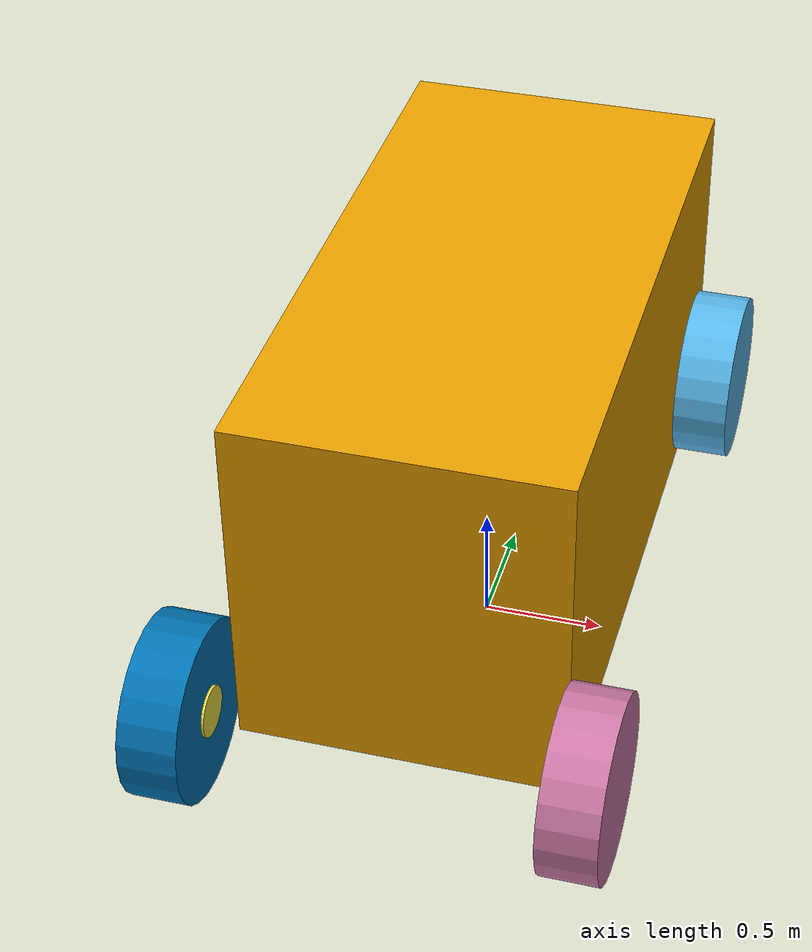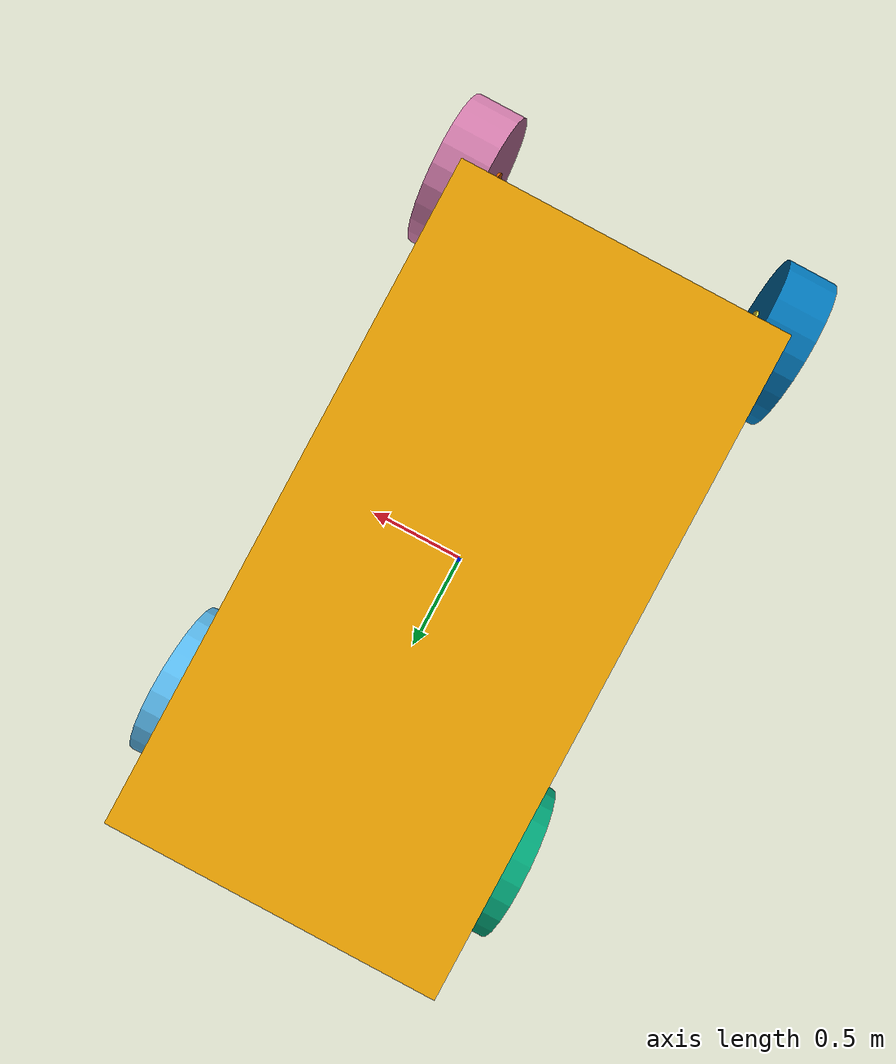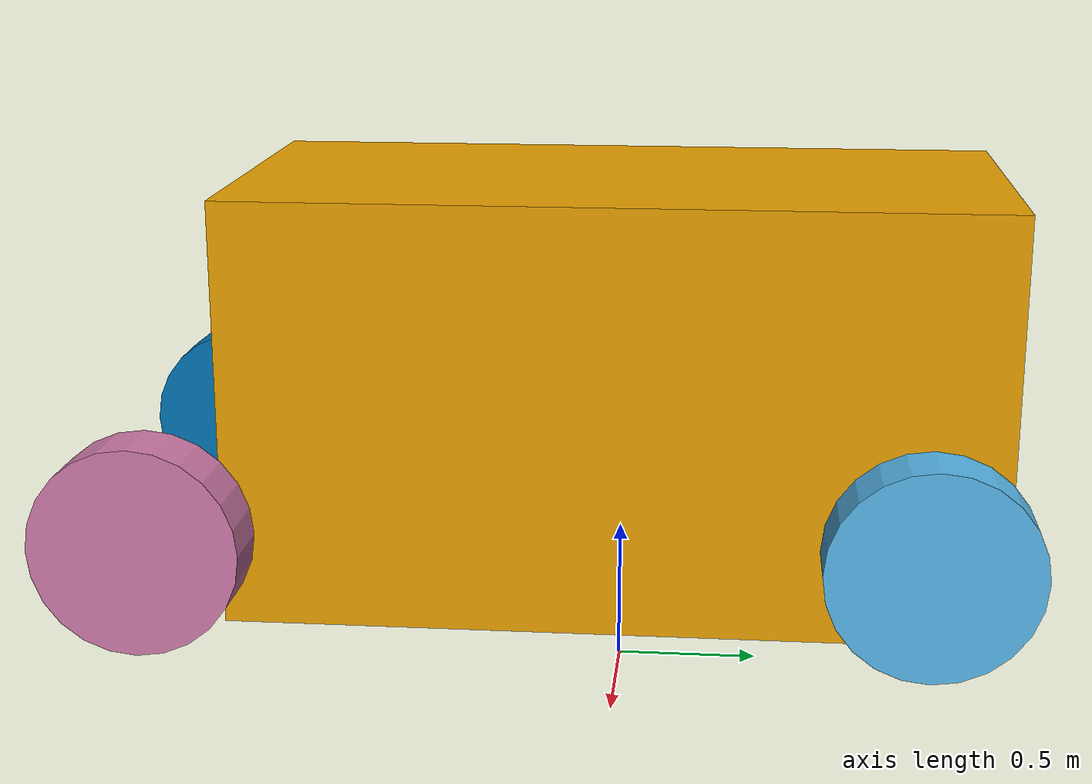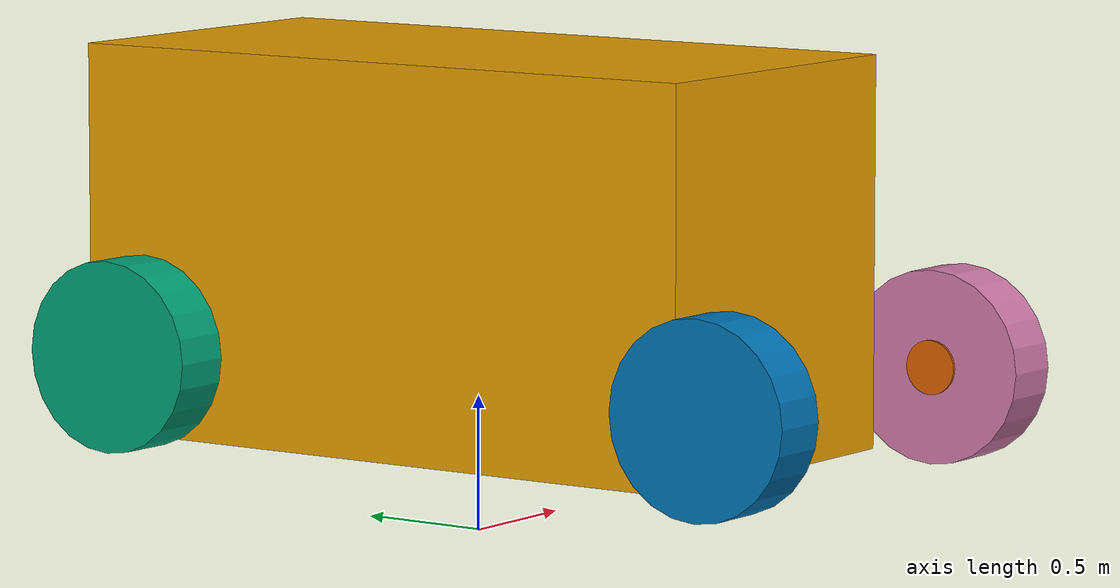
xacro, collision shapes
<?xml version="1.0" ?>

<robot name="Box" xmlns:xacro="http://www.ros.org/wiki/xacro">

  <xacro:property name="PI" value="3.1415926835897931"/>
  <xacro:property name="base_height" value="1.0639"/>
  <xacro:property name="tyre_x" value="-1.05"/>
  <xacro:property name="tyre_x2" value="-1.55"/>
  <xacro:property name="tyre_y" value="0.765"/>
  <xacro:property name="tyre_length" value="0.229"/>
  <xacro:property name="tyre_r" value="0.66"/>
  <xacro:property name="tyre_radius" value="0.356"/>
  <xacro:property name="car_height" value="1.4478"/>
  <xacro:property name="sensor_box" value="0.25"/>
  <xacro:property name="tyre_height" value="-0.696"/>
  <xacro:property name="str_length" value="0.01"/>
  <xacro:property name="str_radius" value="0.1"/>
  <xacro:property name="str_angle" value="0.05"/>
  <xacro:property name="car_width" value="1.301"/>
  <xacro:property name="tyre_origin">
        <origin xyz="0 0 0" rpy="${PI/2} 0 ${-PI/2}"/>
  </xacro:property>
  <xacro:property name="tyre_origin_2">
        <origin xyz="0 0 0" rpy="0 0 ${-PI/2}"/>
  </xacro:property>
  <xacro:property name="tyre_origin_3">
        <origin xyz="0 0 0" rpy="0 0 0"/>
  </xacro:property>

        <xacro:include filename="$(find cat_description)/urdf/box.gazebo"/>

<!--Car Body-->

<link name="base_link">
     <collision>
         <origin xyz="0 0 ${base_height}" rpy="0 0 ${-PI/2}"/>
           <geometry>
            <box size="2.62 ${car_width} ${car_height}"/>
        </geometry>
      </collision>

     <visual>
        <origin xyz="0 0 ${base_height + 0.05}" rpy="0 0 ${-PI/2}"/>
        <geometry>
          <mesh filename="package://cat_description/meshes/ford_escape_no_wheels_2.dae"/>
        </geometry>
     </visual>

     <inertial>
        <origin xyz="0 0 ${base_height}" rpy="0 0 0"/>
        <mass value="2000.000000"/>
        <inertia
          ixx="480"  ixy="0.000000" ixz="0.000000"
          iyy="1370" iyz="0.000000"
          izz="1370"/>
      </inertial>
</link>

<!--Back Right Wheel-->

<joint name="back_right_wheel_joint" type="fixed">
      <parent link="base_link"/>
      <child link="back_right_wheel_link"/>
      <origin xyz="${tyre_y} ${-tyre_x} ${tyre_r}" rpy="0 0 0"/>
      <axis xyz="0 1 0"/>
      <dynamics damping="0.7"/>
     <limit effort="100" velocity="100" />
      <joint_properties damping="0.0" friction="5.0" />
</joint>

<link name="back_right_wheel_link">
     <collision>
	<xacro:insert_block name="tyre_origin"/>
        <geometry>
         <cylinder length="${tyre_length}" radius="${tyre_radius}"/>
        </geometry>
     </collision>

     <visual>
      <xacro:insert_block name="tyre_origin_3"/>
        <geometry>
          <mesh filename="package://cat_description/meshes/ford_escape_wheel.dae"/>
      <scale xyz="1.2 1 1"/>
        </geometry>
      </visual>

      <inertial>
        <origin xyz="0 0 0" rpy="0 0 0"/>
        <mass value="10.00"/>
        <inertia
          ixx="0.4"  ixy="0.000000"  ixz="0.000000"
          iyy="0.6"  iyz="0.000000"
          izz="0.4"/>
      </inertial>
</link>

<!--Back Left Wheel-->

<joint name="back_left_wheel_joint" type="fixed">
      <parent link="base_link"/>
      <child link="back_left_wheel_link"/>
      <origin xyz="${-tyre_y} ${-tyre_x} ${tyre_r}" rpy="0 0 0"/>
      <axis xyz="0 1 0"/>
      <limit effort="100" velocity="100" />
      <joint_properties damping="0.0" friction="5.0" />
</joint>

<link name="back_left_wheel_link">
     <collision>
      <xacro:insert_block name="tyre_origin"/>
        <geometry>
         <cylinder length="0.229" radius="${tyre_radius}"/>
        </geometry>
     </collision>

     <visual>
      <origin xyz="0 0 0" rpy="0 0 ${PI}"/>
        <geometry>
          <mesh filename="package://cat_description/meshes/ford_escape_wheel.dae"/>
          <scale xyz="1.2 1 1"/>
        </geometry>
      </visual>

      <inertial>
        <origin xyz="0 0 0" rpy="0 0 0"/>
        <mass value="10.00"/>
        <inertia
          ixx="0.4"  ixy="0.000000"  ixz="0.000000"
          iyy="0.6"  iyz="0.000000"
          izz="0.4"/>
      </inertial>
</link>

<!--Right Steering-->

<joint name="front_right_steering_joint" type="revolute">
        <parent link="base_link"/>
        <child link="front_right_steering_link"/>
        <origin xyz="${-car_width/2 - str_length/2} ${tyre_x2}  ${tyre_r}" rpy="0 0 0"/>
        <axis xyz="0 0 1"/>
        <limit effort="1000.0" lower="${-str_angle}" upper="${str_angle}" velocity="0.5"/>
</joint>

<link name="front_right_steering_link">
        <collision>
              <xacro:insert_block name="tyre_origin"/>
                <geometry>
                 <cylinder length="${str_length}" radius="${str_radius}"/>
                </geometry>
        </collision>

        <visual>
              <xacro:insert_block name="tyre_origin"/>
                <geometry>
                 <cylinder length="${str_length}" radius="${str_radius}"/>
                </geometry>
        </visual>

      <inertial>
        <origin xyz="0 0 0" rpy="0 0 0"/>
        <mass value="1.00"/>
        <inertia
          ixx="0.4"  ixy="0.000000"  ixz="0.000000"
          iyy="0.6"  iyz="0.000000"
          izz="0.4"/>
      </inertial>
</link>

<!--Right Front Wheel-->

<joint name="front_right_wheel_joint" type="fixed">
      <parent link="front_right_steering_link"/>
      <child link="front_right_wheel_link"/>
      <origin xyz="${-str_length/2 - tyre_length/2} 0 0" rpy="0 0 ${PI}"/>
      <axis xyz="0 1 0"/>
</joint>

<link name="front_right_wheel_link">
     <collision>
      <xacro:insert_block name="tyre_origin"/>
        <geometry>
         <cylinder length="${tyre_length}" radius="${tyre_radius}"/>
        </geometry>

     </collision>

     <visual>
      <xacro:insert_block name="tyre_origin_3"/>
        <geometry>
          <mesh filename="package://cat_description/meshes/ford_escape_wheel.dae"/>
        <scale xyz="1.2 1 1"/>
       </geometry>
      </visual>

      <inertial>
        <origin xyz="0 0 0" rpy="0 0 0"/>
        <mass value="10.00"/>
        <inertia
          ixx="0.4"  ixy="0.000000"  ixz="0.000000"
          iyy="0.6"  iyz="0.000000"
          izz="0.4"/>
      </inertial>
</link>

<!--Left Steering-->

<joint name="front_left_steering_joint" type="revolute">
        <parent link="base_link"/>
        <child link="front_left_steering_link"/>
        <origin xyz="${car_width/2 + str_length/2} ${tyre_x2} ${tyre_r}" rpy="0 0 0"/>
        <axis xyz="0 0 1"/>
        <limit effort="1000.0" lower="${-str_angle}" upper="${str_angle}" velocity="0.5"/>
</joint>

<link name="front_left_steering_link">
        <collision>
              <xacro:insert_block name="tyre_origin"/>
                <geometry>
                 <cylinder length="${str_length}" radius="${str_radius}"/>
                </geometry>
        </collision>

        <visual>
              <xacro:insert_block name="tyre_origin"/>
                <geometry>
                 <cylinder length="${str_length}" radius="${str_radius}"/>
                </geometry>
        </visual>

      <inertial>
        <origin xyz="0 0 0" rpy="0 0 0"/>
        <mass value="1.00"/>
        <inertia
          ixx="0.4"  ixy="0.000000"  ixz="0.000000"
          iyy="0.6"  iyz="0.000000"
          izz="0.4"/>
      </inertial>
</link>

<!--Front Right Wheel-->

<joint name="front_left_wheel_joint" type="fixed">
      <parent link="front_left_steering_link"/>
      <child link="front_left_wheel_link"/>
      <origin xyz="${str_length/2 + tyre_length/2} 0 0" rpy="0 0 0"/>
      <axis xyz="0 1 0"/>
</joint>

<link name="front_left_wheel_link">
     <collision>
      <xacro:insert_block name="tyre_origin"/>
               <geometry>
         <cylinder length="0.229" radius="${tyre_radius}"/>
        </geometry>
     </collision>

     <visual>
      <xacro:insert_block name="tyre_origin_3"/>
       <geometry>
          <mesh filename="package://cat_description/meshes/ford_escape_wheel.dae"/>
            <scale xyz="1.2 1 1"/>
       </geometry>
      </visual>

      <inertial>
        <origin xyz="0 0 0" rpy="0 0 0"/>
        <mass value="10.00"/>
        <inertia
          ixx="0.4"  ixy="0.000000"  ixz="0.000000"
          iyy="0.6"  iyz="0.000000"
          izz="0.4"/>
      </inertial>
</link>

<!-- Camera-->
</robot>
